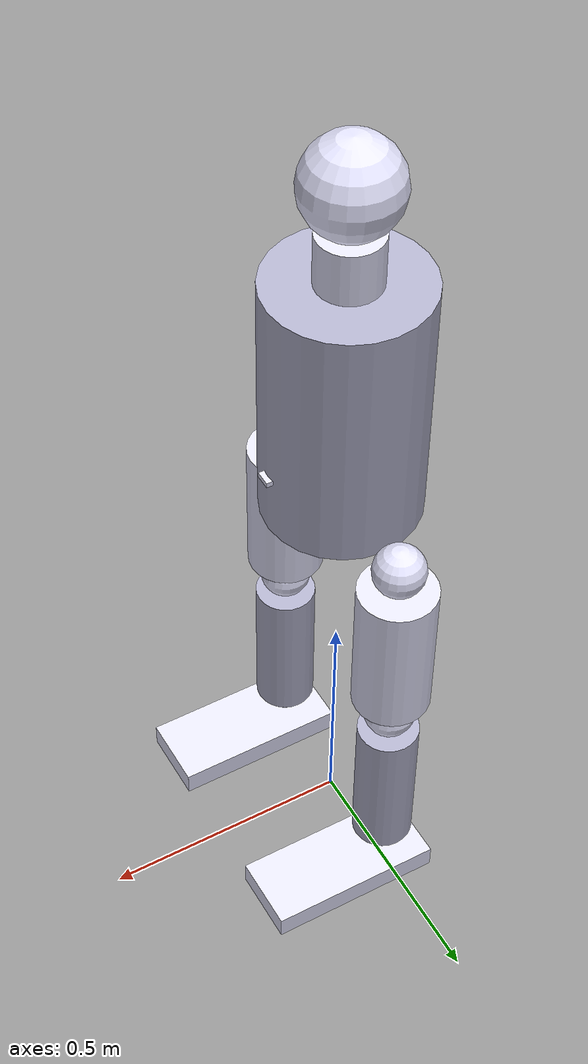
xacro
<?xml version="1.0"?>
<robot xmlns:xacro="http://www.ros.org/wiki/xacro" name="myrobot_st4">
  <!-- Body properties -->
  <xacro:property name="body_radius" value="0.15" />
  <xacro:property name="body_length" value="0.5" />
  <xacro:property name="body_mass" value="35.1" />
  <!-- Inertia for solid cylinder (axis z): Ixx = Iyy = (1/12)*m*(3*r^2+h^2); Izz = (1/2)*m*r^2 -->
  <xacro:property name="body_ixx" value="${(1.0/12.0) * body_mass * (3 * body_radius * body_radius + body_length * body_length)}" />
  <xacro:property name="body_iyy" value="${(1.0/12.0) * body_mass * (3 * body_radius * body_radius + body_length * body_length)}" />
  <xacro:property name="body_izz" value="${0.5 * body_mass * body_radius * body_radius}" />

  <!-- Neck properties -->
  <xacro:property name="neck_radius" value="0.06" />
  <xacro:property name="neck_length" value="0.10" />
  <xacro:property name="neck_mass" value="1.0" />
  <xacro:property name="neck_ixx" value="${(1.0/12.0) * neck_mass * (3 * neck_radius * neck_radius + neck_length * neck_length)}" />
  <xacro:property name="neck_iyy" value="${(1.0/12.0) * neck_mass * (3 * neck_radius * neck_radius + neck_length * neck_length)}" />
  <xacro:property name="neck_izz" value="${0.5 * neck_mass * neck_radius * neck_radius}" />

  <!-- Hip properties -->
  <xacro:property name="hip_radius" value="0.05" />
  <xacro:property name="hip_mass" value="0.0" />
  <!-- Inertia for solid sphere: Ixx = Iyy = Izz = (2/5)*m*r^2 -->
  <xacro:property name="hip_ixx" value="${0.4 * hip_mass * hip_radius * hip_radius}" />
  <xacro:property name="hip_iyy" value="${0.4 * hip_mass * hip_radius * hip_radius}" />
  <xacro:property name="hip_izz" value="${0.4 * hip_mass * hip_radius * hip_radius}" />

  <!-- Thigh properties -->
  <xacro:property name="thigh_radius" value="0.075" />
  <xacro:property name="thigh_length" value="0.3" />   <!-- 0.4 - hip_radius - knee_radius -->
  <xacro:property name="thigh_mass" value="18.5" />
  <!-- Inertia for solid cylinder (axis z): Ixx = Iyy = (1/12)*m*(3*r^2+h^2); Izz = (1/2)*m*r^2 -->
  <xacro:property name="thigh_ixx" value="${(1.0/12.0) * thigh_mass * (3 * thigh_radius * thigh_radius + thigh_length * thigh_length)}" />
  <xacro:property name="thigh_iyy" value="${(1.0/12.0) * thigh_mass * (3 * thigh_radius * thigh_radius + thigh_length * thigh_length)}" />
  <xacro:property name="thigh_izz" value="${0.5 * thigh_mass * thigh_radius * thigh_radius}" />

  <!-- Knee properties -->
  <xacro:property name="knee_radius" value="0.05" />
  <xacro:property name="knee_mass" value="0.0" />
  <!-- Inertia for solid sphere: Ixx = Iyy = Izz = (2/5)*m*r^2 -->
  <xacro:property name="knee_ixx" value="${0.4 * knee_mass * knee_radius * knee_radius}" />
  <xacro:property name="knee_iyy" value="${0.4 * knee_mass * knee_radius * knee_radius}" />
  <xacro:property name="knee_izz" value="${0.4 * knee_mass * knee_radius * knee_radius}" />

  <!-- Shin properties -->
  <xacro:property name="shin_radius" value="0.06" />
  <xacro:property name="shin_length" value="0.32" />   <!-- 0.43 - knee_radius - 2 * ankle_radius -->
  <xacro:property name="shin_mass" value="7.6" />
  <!-- Inertia for solid cylinder (axis z): Ixx = Iyy = (1/12)*m*(3*r^2+h^2); Izz = (1/2)*m*r^2 -->
  <xacro:property name="shin_ixx" value="${(1.0/12.0) * shin_mass * (3 * shin_radius * shin_radius + shin_length * shin_length)}" />
  <xacro:property name="shin_iyy" value="${(1.0/12.0) * shin_mass * (3 * shin_radius * shin_radius + shin_length * shin_length)}" />
  <xacro:property name="shin_izz" value="${0.5 * shin_mass * shin_radius * shin_radius}" />

  <!-- Ankle properties -->
  <xacro:property name="ankle_radius" value="0.03" />
  <xacro:property name="ankle_mass" value="0.0" />
  <!-- Inertia for solid sphere: Ixx = Iyy = Izz = (2/5)*m*r^2 -->
  <xacro:property name="ankle_ixx" value="${0.4 * ankle_mass * ankle_radius * ankle_radius}" />
  <xacro:property name="ankle_iyy" value="${0.4 * ankle_mass * ankle_radius * ankle_radius}" />
  <xacro:property name="ankle_izz" value="${0.4 * ankle_mass * ankle_radius * ankle_radius}" />

  <!-- Foot properties -->
  <xacro:property name="foot_length" value="0.35" />
  <xacro:property name="foot_width" value="0.15" />
  <xacro:property name="foot_height" value="0.05" />
  <xacro:property name="foot_offset_front" value="0.1" />
  <xacro:property name="foot_mass" value="2.1" />
  <!-- Inertia for box (length, width, height): Ixx = (1/12)*m*(w^2+h^2); Iyy = (1/12)*m*(l^2+h^2); Izz = (1/12)*m*(l^2+w^2) -->
  <xacro:property name="foot_ixx" value="${(1.0/12.0) * foot_mass * (foot_width * foot_width + foot_height * foot_height)}" />
  <xacro:property name="foot_iyy" value="${(1.0/12.0) * foot_mass * (foot_length * foot_length + foot_height * foot_height)}" />
  <xacro:property name="foot_izz" value="${(1.0/12.0) * foot_mass * (foot_length * foot_length + foot_width * foot_width)}" />

  <!-- Head properties -->
  <xacro:property name="head_radius" value="0.09" />
  <xacro:property name="head_mass" value="4.5" />
  <!-- Inertia for solid sphere: Ixx = Iyy = Izz = (2/5)*m*r^2 -->
  <xacro:property name="head_ixx" value="${0.4 * head_mass * head_radius * head_radius}" />
  <xacro:property name="head_iyy" value="${0.4 * head_mass * head_radius * head_radius}" />
  <xacro:property name="head_izz" value="${0.4 * head_mass * head_radius * head_radius}" />

  <!-- IMU properties -->
  <xacro:property name="imu_length" value="0.02" />
  <xacro:property name="imu_width" value="0.03" />
  <xacro:property name="imu_height" value="0.01" />
  <xacro:property name="imu_mass" value="0.01" />
  <!-- Inertia for box (length, width, height): Ixx = (1/12)*m*(w^2+h^2); Iyy = (1/12)*m*(l^2+h^2); Izz = (1/12)*m*(l^2+w^2) -->
  <xacro:property name="imu_ixx" value="${(1.0/12.0) * imu_mass * (imu_width * imu_width + imu_height * imu_height)}" />
  <xacro:property name="imu_iyy" value="${(1.0/12.0) * imu_mass * (imu_length * imu_length + imu_height * imu_height)}" />
  <xacro:property name="imu_izz" value="${(1.0/12.0) * imu_mass * (imu_length * imu_length + imu_width * imu_width)}" />

  <!-- Controle -->
  <xacro:property name="joint_damping" value="0.2" />
  <xacro:property name="joint_friction" value="0.01" />

  <!-- Materials -->
  <material name="robot_material_1">
    <color rgba="0.7 0.7 0.8 1"/>
  </material>
  <material name="robot_material_2">
    <color rgba="0.9 0.9 1.0 1"/>
  </material>

  <!-- altura total -->
  <xacro:property name="leg_total_length" value="${hip_radius + thigh_length + 2 * knee_radius + shin_length + 2 * ankle_radius + foot_height}" />
  <!-- body_offset: body_length/2 desloca o posicao Z do centro do cilindro (corpo do robo) para a sua base inferior, assim nao fica metade do corpo enterrado no chao -->
  <!-- body_offset: leg_total_length da espaco para as pernas, para elas nao ficarem enterradas no chao -->
  <xacro:property name="body_offset" value="${body_length/2 + leg_total_length}" />
  <!-- Conversao de graus para radianos -->
  <xacro:property name="deg_to_rad" value="${3.14159 / 180}" />

  <!-- Body (main cylinder) -->
  <link name="base_link">
    <visual>
      <origin xyz="0 0 ${body_offset}"/>
      <geometry>
        <cylinder length="${body_length}" radius="${body_radius}"/>
      </geometry>
      <material name="robot_material_1"/>
    </visual>
    <collision>
      <origin xyz="0 0 ${body_offset}"/>
      <geometry>
        <cylinder length="${body_length}" radius="${body_radius}"/>
      </geometry>
    </collision>
    <inertial>
      <origin xyz="0 0 ${body_offset}"/>
      <mass value="${body_mass}"/>
      <inertia ixx="${body_ixx}" ixy="0.0" ixz="0.0" iyy="${body_iyy}" iyz="0.0" izz="${body_izz}"/>
    </inertial>
  </link>

  <!-- IMU (simulated sensor, offset from body center) -->
  <link name="imu_link">
    <visual>
      <origin xyz="0 0 0" rpy="0 0 0"/>
      <geometry>
        <box size="${imu_length} ${imu_width} ${imu_height}"/>
      </geometry>
      <material name="robot_material_2"/>
    </visual>
    <collision>
      <origin xyz="0 0 0" rpy="0 0 0"/>
      <geometry>
        <box size="${imu_length} ${imu_width} ${imu_height}"/>
      </geometry>
    </collision>
    <inertial>
      <mass value="${imu_mass}"/>
      <inertia ixx="${imu_ixx}" ixy="0.0" ixz="0.0" iyy="${imu_iyy}" iyz="0.0" izz="${imu_izz}"/>
    </inertial>
  </link>

  <joint name="base_to_imu" type="fixed">
    <parent link="base_link"/>
    <child link="imu_link"/>
    <!-- Z: Como o corpo principal e posicionado em 0 0 0, body_offset move a IMU para o centro do corpo -->
    <!-- Z: body_length/4 move a IMU um pouco para baixo, como se estivesse posicionado ela na cintura -->
    <origin xyz="${body_radius} 0 ${body_offset - body_length/4}" rpy="0 0 0"/>
  </joint>

  <!-- Neck -->
  <link name="neck_link">
    <visual>
      <origin xyz="0 0 ${neck_length/2}" rpy="0 0 0"/>
      <geometry>
        <cylinder length="${neck_length}" radius="${neck_radius}"/>
      </geometry>
      <material name="robot_material_2"/>
    </visual>
    <collision>
      <origin xyz="0 0 ${neck_length/2}" rpy="0 0 0"/>
      <geometry>
        <cylinder length="${neck_length}" radius="${neck_radius}"/>
      </geometry>
    </collision>
    <inertial>
      <mass value="${neck_mass}"/>
      <inertia ixx="${neck_ixx}" ixy="0.0" ixz="0.0" iyy="${neck_iyy}" iyz="0.0" izz="${neck_izz}"/>
    </inertial>
  </link>

  <!-- Neck joint: body to neck -->
  <joint name="base_to_neck" type="fixed">
    <parent link="base_link"/>
    <child link="neck_link"/>
    <origin xyz="0 0 ${body_offset + body_length/2}"/>
  </joint>

  <!-- Head (sphere) -->
  <link name="head_link">
    <visual>
      <!-- Z: head_radius shifts the Z plane from the heads's center to its base -->
      <origin rpy="0 0 0" xyz="0 0 ${head_radius}"/>
      <geometry>
        <sphere radius="${head_radius}"/>
      </geometry>
      <material name="robot_material_2"/>
    </visual>
    <collision>
      <origin rpy="0 0 0" xyz="0 0 ${head_radius}"/>
      <geometry>
        <sphere radius="${head_radius}"/>
      </geometry>
    </collision>
    <inertial>
      <origin rpy="0 0 0" xyz="0 0 ${head_radius}"/>
      <mass value="${head_mass}"/>
      <inertia ixx="${head_ixx}" ixy="0.0" ixz="0.0" iyy="${head_iyy}" iyz="0.0" izz="${head_izz}"/>
    </inertial>
  </link>

  <!-- Head joint: neck to head -->
  <joint name="neck_to_head" type="fixed">
    <parent link="neck_link"/>
    <child link="head_link"/>
    <!-- Z: Como o corpo principal e posicionado em 0 0 0, body_offset move a joint para o centro do corpo -->
    <!-- Z: body_length/2 move a joint para o topo do corpo -->
	  <origin xyz="0 0 ${neck_length}"/>
  </joint>

  <!-- Leg macro (creates left/right leg: thigh, shin, foot) -->
  <xacro:macro name="leg" params="prefix reflect">
    <!-- Hip joint: base_link to hip ball -->
    <joint name="base_to_${prefix}_hip_ball" type="revolute">
      <parent link="base_link"/>
      <child link="${prefix}_hip_ball_link"/>
      <!-- Z: Como o corpo principal e posicionado em 0 0 0, body_offset move o centro da esfera/articulacao para o centro do corpo -->
      <!-- Z: Diminuir body_length/2 move o centro da esfera/articulacao para a base inferior do corpo -->
      <!-- Y: body_radius posiciona o centro da esfera/articulacao do quadril na borda do corpo -->
      <!-- Y: hip_radius tira a esfera/articulacao de dentro do corpo, caso contrario metade da esfera/articulacao ficaria dentro do corpo -->
      <origin xyz="0 ${(body_radius + hip_radius) * reflect} ${body_offset - body_length/2}"/>
      <axis xyz="0 1 0"/> <!-- Movimento frontal -->
      <limit lower="${-75 * deg_to_rad}" upper="${60 * deg_to_rad}" effort="1000" velocity="5"/>
      <dynamics damping="${joint_damping}" friction="${joint_friction}"/>
    </joint>

    <!-- Hip Ball -->
    <link name="${prefix}_hip_ball_link">
      <visual>
        <origin rpy="0 0 0" xyz="0 0 0"/>
        <geometry>
          <sphere radius="${hip_radius}"/>
        </geometry>
        <material name="robot_material_2"/>
      </visual>
      <collision>
        <origin rpy="0 0 0" xyz="0 0 0"/>
        <geometry>
          <sphere radius="${hip_radius}"/>
        </geometry>
      </collision>
      <inertial>
        <mass value="${hip_mass}"/>
        <inertia ixx="${hip_ixx}" ixy="0.0" ixz="0.0" iyy="${hip_iyy}" iyz="0.0" izz="${hip_izz}"/>
      </inertial>
    </link>

    <!-- Hip joint: hip_ball_link to thigh -->
    <joint name="hip_ball_to_${prefix}_thigh" type="revolute">
      <parent link="${prefix}_hip_ball_link"/>
      <child link="${prefix}_thigh_link"/>
      <origin xyz="0 0 0"/>
      <axis xyz="1 0 0"/> <!-- Movimento lateral -->
      <limit lower="${-20 * deg_to_rad}" upper="${20 * deg_to_rad}" effort="1000" velocity="5"/>
      <dynamics damping="${joint_damping}" friction="${joint_friction}"/>
    </joint>

    <!-- Thigh -->
    <link name="${prefix}_thigh_link">
      <visual>
        <!-- Z: hip_radius desloca o centro da coxa para fora da esfera/articulacao do quadril -->
        <!-- Z: thigh_length/2 desloca a coxa para baixo, para que seu topo encoste na esfera/articulacao do quadril -->
        <origin rpy="0 0 0" xyz="0 0 ${-thigh_length/2 - hip_radius}"/>
        <geometry>
          <cylinder length="${thigh_length}" radius="${thigh_radius}"/>
        </geometry>
        <material name="robot_material_2"/>
      </visual>
      <collision>
        <origin rpy="0 0 0" xyz="0 0 ${-thigh_length/2 - hip_radius}"/>
        <geometry>
          <cylinder length="${thigh_length}" radius="${thigh_radius}"/>
        </geometry>
      </collision>
      <inertial>
        <origin rpy="0 0 0" xyz="0 0 ${-thigh_length/2 - hip_radius}"/>
        <mass value="${thigh_mass}"/>
        <inertia ixx="${thigh_ixx}" ixy="0.0" ixz="0.0" iyy="${thigh_iyy}" iyz="0.0" izz="${thigh_izz}"/>
      </inertial>
    </link>

    <!-- Knee joint: thigh to knee ball -->
    <joint name="${prefix}_thigh_to_knee_ball" type="fixed">
      <parent link="${prefix}_thigh_link"/>
      <child link="${prefix}_knee_ball_link"/>
      <!-- Z: Como o parent e a coxa, o centro da esfera/articulacao do joelho coincide inicialmente com sua referencia que é o hip joint posicionado na base inferior do body -->
      <!-- Z: Diminuir hip_radius + thigh_length faz o centro da esfera/articulacao do joelho coincidir com a base inferior da coxa -->
      <!-- Z: Diminuir knee_radius faz o topo da esfera/articulacao do joelho coincidir com a base inferior da coxa -->
      <origin xyz="0 0 ${-hip_radius - thigh_length - knee_radius }"/>
    </joint>

    <!-- Knee Ball -->
    <link name="${prefix}_knee_ball_link">
      <visual>
        <origin rpy="0 0 0" xyz="0 0 0"/>
        <geometry>
          <sphere radius="${knee_radius}"/>
        </geometry>
        <material name="robot_material_2"/>
      </visual>
      <collision>
        <origin rpy="0 0 0" xyz="0 0 0"/>
        <geometry>
          <sphere radius="${knee_radius}"/>
        </geometry>
      </collision>
      <inertial>
        <mass value="${knee_mass}"/>
        <inertia ixx="${knee_ixx}" ixy="0.0" ixz="0.0" iyy="${knee_iyy}" iyz="0.0" izz="${knee_izz}"/>
      </inertial>
    </link>

    <!-- Knee joint: knee ball to shin -->
    <joint name="${prefix}_knee_ball_to_shin" type="revolute">
      <parent link="${prefix}_knee_ball_link"/>
      <child link="${prefix}_shin_link"/>
      <origin xyz="0 0 0"/>
      <axis xyz="0 1 0"/>
      <limit lower="${0 * deg_to_rad}" upper="${90 * deg_to_rad}" effort="1000" velocity="5"/>
      <dynamics damping="${joint_damping}" friction="${joint_friction}"/>
    </joint>

    <!-- Shin -->
    <link name="${prefix}_shin_link">
      <visual>
        <!-- Z: knee_radius desloca o centro da canela para fora da esfera/articulacao do joelho -->
        <!-- Z: shin_length/2 desloca a canela para baixo, para que seu topo encoste na esfera/articulacao do joelho -->
        <origin rpy="0 0 0" xyz="0 0 ${-shin_length/2 - knee_radius}"/>
        <geometry>
          <cylinder length="${shin_length}" radius="${shin_radius}"/>
        </geometry>
        <material name="robot_material_1"/>
      </visual>
      <collision>
        <origin rpy="0 0 0" xyz="0 0 ${-shin_length/2 - knee_radius}"/>
        <geometry>
          <cylinder length="${shin_length}" radius="${shin_radius}"/>
        </geometry>
      </collision>
      <inertial>
        <origin rpy="0 0 0" xyz="0 0 ${-shin_length/2 - knee_radius}"/>
        <mass value="${shin_mass}"/>
        <inertia ixx="${shin_ixx}" ixy="0.0" ixz="0.0" iyy="${shin_iyy}" iyz="0.0" izz="${shin_izz}"/>
      </inertial>
    </link>

    <!-- Ankle joint: shin to ankle ball -->
    <joint name="${prefix}_shin_to_ankle_ball" type="revolute">
      <parent link="${prefix}_shin_link"/>
      <child link="${prefix}_ankle_ball_link"/>
      <!-- Z: Como o parent e a canela, o centro da esfera/articulacao do tornozelo coincide inicialmente com sua referencia que é o knee joint -->
      <!-- Z: Diminuir knee_radius + shin_length faz o centro da esfera/articulacao do tornozelo coincidir com a base inferior da canela -->
      <!-- Z: Diminuir ankle_radius faz o topo da esfera/articulacao do tornozelo coincidir com a base inferior da canela -->
      <origin xyz="0 0 ${-knee_radius - shin_length - ankle_radius}"/>
      <axis xyz="0 1 0"/> <!-- Movimento frontal -->
      <limit lower="${-30 * deg_to_rad}" upper="${75 * deg_to_rad}" effort="1000" velocity="5"/>
      <dynamics damping="${joint_damping}" friction="${joint_friction}"/>
    </joint>

    <!-- Ankle Ball -->
    <link name="${prefix}_ankle_ball_link">
      <visual>
        <origin rpy="0 0 0" xyz="0 0 0"/>
        <geometry>
          <sphere radius="${ankle_radius}"/>
        </geometry>
        <material name="robot_material_2"/>
      </visual>
      <collision>
        <origin rpy="0 0 0" xyz="0 0 0"/>
        <geometry>
          <sphere radius="${ankle_radius}"/>
        </geometry>
      </collision>
      <inertial>
        <mass value="${ankle_mass}"/>
        <inertia ixx="${ankle_ixx}" ixy="0.0" ixz="0.0" iyy="${ankle_iyy}" iyz="0.0" izz="${ankle_izz}"/>
      </inertial>
    </link>

    <!-- Ankle joint: ankle ball to foot -->
    <joint name="${prefix}_ankle_ball_to_foot" type="revolute">
      <parent link="${prefix}_ankle_ball_link"/>
      <child link="${prefix}_foot_link"/>
      <origin xyz="0 0 0"/>
      <axis xyz="1 0 0"/> <!-- Movimento lateral -->
      <limit lower="${-30 * deg_to_rad}" upper="${30 * deg_to_rad}" effort="1000" velocity="5"/>
      <dynamics damping="${joint_damping}" friction="${joint_friction}"/>
    </joint>

    <!-- Foot -->
    <link name="${prefix}_foot_link">
      <visual>
        <!-- Z: ankle_radius desloca o centro do pe para fora da esfera/articulacao do tornozelo -->
        <!-- Z: foot_height/2 faz o pe sair da articulacao do tornozelo, coincidindo seu topo com o raio da esfera/articulacao -->
        <!-- X: foot_offset_front desloca o pe um pouco para frente, para parecer um pe normal em que ele fica mais para frente do que para tras -->
        <origin rpy="0 0 0" xyz="${foot_offset_front} 0 ${-ankle_radius - foot_height/2}"/>
        <geometry>
          <box size="${foot_length} ${foot_width} ${foot_height}"/>
        </geometry>
        <material name="robot_material_2"/>
      </visual>
      <collision>
        <origin rpy="0 0 0" xyz="${foot_offset_front} 0 ${-ankle_radius - foot_height/2}"/>
        <geometry>
          <box size="${foot_length} ${foot_width} ${foot_height}"/>
        </geometry>
      </collision>
      <inertial>
        <origin rpy="0 0 0" xyz="${foot_offset_front} 0 ${-ankle_radius - foot_height/2}"/>
        <mass value="${foot_mass}"/>
        <inertia ixx="${foot_ixx}" ixy="0.0" ixz="0.0" iyy="${foot_iyy}" iyz="0.0" izz="${foot_izz}"/>
      </inertial>
    </link>

  </xacro:macro>

  <!-- Instantiate right and left legs -->
  <xacro:leg prefix="right" reflect="-1" />
  <xacro:leg prefix="left" reflect="1" />

</robot>
